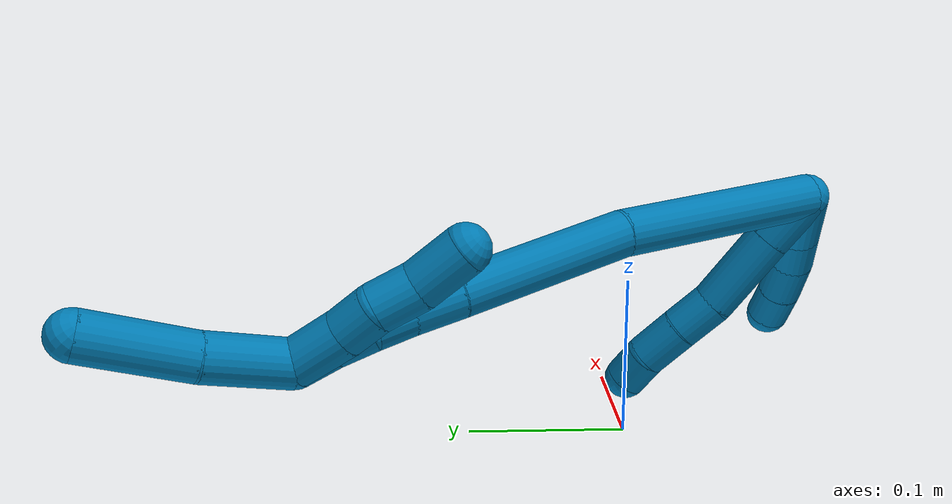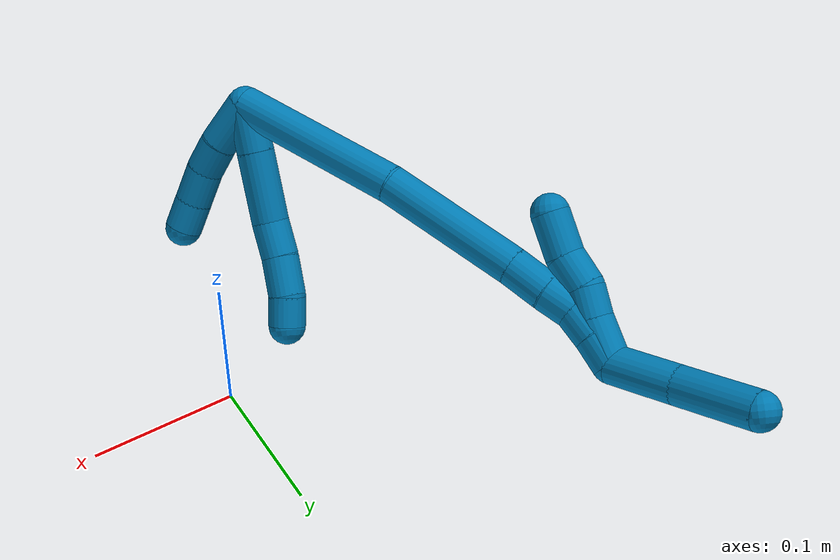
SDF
<sdf version="1.7">
 <world name="default">
  <model name="9">
   <static>0</static>
   <link name="9">
    <collision name="collision-cylinder-e_1_2_8">
     <pose>-0.002611 -0.003166 -0.015028 2.93397 -0.168423 -1.36185</pose>
     <geometry><cylinder><radius>0.0125</radius><length>0.031156</length></cylinder></geometry>
     <surface>
      <friction><ode><mu>1.16</mu><mu2>1.16</mu2><slip1>0</slip1><slip2>0</slip2></ode></friction>
      <contact><ode><kp>1e+06</kp><kd>1</kd><max_vel>0</max_vel><min_depth>0.001</min_depth></ode></contact>
     </surface>
    </collision>
    <visual name="visual-cylinder-e_1_2_8">
     <pose>-0.002611 -0.003166 -0.015028 2.93397 -0.168423 -1.36185</pose>
     <geometry><cylinder><radius>0.0125</radius><length>0.031156</length></cylinder></geometry>
     <material><ambient>0 0.490196 0.709804 1</ambient></material>
    </visual>
    <collision name="collision-cylinder-e_2_8_9">
     <pose>-0.009347 -0.011421 -0.053113 2.92435 -0.172913 -1.34312</pose>
     <geometry><cylinder><radius>0.0125</radius><length>0.047939</length></cylinder></geometry>
     <surface>
      <friction><ode><mu>1.16</mu><mu2>1.16</mu2><slip1>0</slip1><slip2>0</slip2></ode></friction>
      <contact><ode><kp>1e+06</kp><kd>1</kd><max_vel>0</max_vel><min_depth>0.001</min_depth></ode></contact>
     </surface>
    </collision>
    <visual name="visual-cylinder-e_2_8_9">
     <pose>-0.009347 -0.011421 -0.053113 2.92435 -0.172913 -1.34312</pose>
     <geometry><cylinder><radius>0.0125</radius><length>0.047939</length></cylinder></geometry>
     <material><ambient>0 0.490196 0.709804 1</ambient></material>
    </visual>
    <collision name="collision-cylinder-e_3_9_10">
     <pose>-0.015719 -0.016765 -0.088044 3.12015 -0.187098 -2.91398</pose>
     <geometry><cylinder><radius>0.0125</radius><length>0.024175</length></cylinder></geometry>
     <surface>
      <friction><ode><mu>1.16</mu><mu2>1.16</mu2><slip1>0</slip1><slip2>0</slip2></ode></friction>
      <contact><ode><kp>1e+06</kp><kd>1</kd><max_vel>0</max_vel><min_depth>0.001</min_depth></ode></contact>
     </surface>
    </collision>
    <visual name="visual-cylinder-e_3_9_10">
     <pose>-0.015719 -0.016765 -0.088044 3.12015 -0.187098 -2.91398</pose>
     <geometry><cylinder><radius>0.0125</radius><length>0.024175</length></cylinder></geometry>
     <material><ambient>0 0.490196 0.709804 1</ambient></material>
    </visual>
    <collision name="collision-cylinder-e_4_10_11">
     <pose>-0.019387 -0.017804 -0.113151 3.08238 -0.106687 -2.12877</pose>
     <geometry><cylinder><radius>0.0125</radius><length>0.026665</length></cylinder></geometry>
     <surface>
      <friction><ode><mu>1.16</mu><mu2>1.16</mu2><slip1>0</slip1><slip2>0</slip2></ode></friction>
      <contact><ode><kp>1e+06</kp><kd>1</kd><max_vel>0</max_vel><min_depth>0.001</min_depth></ode></contact>
     </surface>
    </collision>
    <visual name="visual-cylinder-e_4_10_11">
     <pose>-0.019387 -0.017804 -0.113151 3.08238 -0.106687 -2.12877</pose>
     <geometry><cylinder><radius>0.0125</radius><length>0.026665</length></cylinder></geometry>
     <material><ambient>0 0.490196 0.709804 1</ambient></material>
    </visual>
    <collision name="collision-cylinder-e_5_11_6">
     <pose>-0.020402 -0.020929 -0.136132 2.90595 0.040372 0.337864</pose>
     <geometry><cylinder><radius>0.0125</radius><length>0.020064</length></cylinder></geometry>
     <surface>
      <friction><ode><mu>1.16</mu><mu2>1.16</mu2><slip1>0</slip1><slip2>0</slip2></ode></friction>
      <contact><ode><kp>1e+06</kp><kd>1</kd><max_vel>0</max_vel><min_depth>0.001</min_depth></ode></contact>
     </surface>
    </collision>
    <visual name="visual-cylinder-e_5_11_6">
     <pose>-0.020402 -0.020929 -0.136132 2.90595 0.040372 0.337864</pose>
     <geometry><cylinder><radius>0.0125</radius><length>0.020064</length></cylinder></geometry>
     <material><ambient>0 0.490196 0.709804 1</ambient></material>
    </visual>
    <collision name="collision-cylinder-e_1_2_12">
     <pose>0.007825 -0.010341 -0.010298 2.35415 0.492151 1.08762</pose>
     <geometry><cylinder><radius>0.0125</radius><length>0.033118</length></cylinder></geometry>
     <surface>
      <friction><ode><mu>1.16</mu><mu2>1.16</mu2><slip1>0</slip1><slip2>0</slip2></ode></friction>
      <contact><ode><kp>1e+06</kp><kd>1</kd><max_vel>0</max_vel><min_depth>0.001</min_depth></ode></contact>
     </surface>
    </collision>
    <visual name="visual-cylinder-e_1_2_12">
     <pose>0.007825 -0.010341 -0.010298 2.35415 0.492151 1.08762</pose>
     <geometry><cylinder><radius>0.0125</radius><length>0.033118</length></cylinder></geometry>
     <material><ambient>0 0.490196 0.709804 1</ambient></material>
    </visual>
    <collision name="collision-cylinder-e_2_12_13">
     <pose>0.019651 -0.027819 -0.027881 2.36638 0.373956 0.867879</pose>
     <geometry><cylinder><radius>0.0125</radius><length>0.021911</length></cylinder></geometry>
     <surface>
      <friction><ode><mu>1.16</mu><mu2>1.16</mu2><slip1>0</slip1><slip2>0</slip2></ode></friction>
      <contact><ode><kp>1e+06</kp><kd>1</kd><max_vel>0</max_vel><min_depth>0.001</min_depth></ode></contact>
     </surface>
    </collision>
    <visual name="visual-cylinder-e_2_12_13">
     <pose>0.019651 -0.027819 -0.027881 2.36638 0.373956 0.867879</pose>
     <geometry><cylinder><radius>0.0125</radius><length>0.021911</length></cylinder></geometry>
     <material><ambient>0 0.490196 0.709804 1</ambient></material>
    </visual>
    <collision name="collision-cylinder-e_3_13_14">
     <pose>0.027167 -0.041806 -0.044528 2.50996 0.294053 0.851078</pose>
     <geometry><cylinder><radius>0.0125</radius><length>0.024242</length></cylinder></geometry>
     <surface>
      <friction><ode><mu>1.16</mu><mu2>1.16</mu2><slip1>0</slip1><slip2>0</slip2></ode></friction>
      <contact><ode><kp>1e+06</kp><kd>1</kd><max_vel>0</max_vel><min_depth>0.001</min_depth></ode></contact>
     </surface>
    </collision>
    <visual name="visual-cylinder-e_3_13_14">
     <pose>0.027167 -0.041806 -0.044528 2.50996 0.294053 0.851078</pose>
     <geometry><cylinder><radius>0.0125</radius><length>0.024242</length></cylinder></geometry>
     <material><ambient>0 0.490196 0.709804 1</ambient></material>
    </visual>
    <collision name="collision-cylinder-e_4_14_5">
     <pose>0.033914 -0.053925 -0.062209 2.5769 0.317397 1.00829</pose>
     <geometry><cylinder><radius>0.0125</radius><length>0.020728</length></cylinder></geometry>
     <surface>
      <friction><ode><mu>1.16</mu><mu2>1.16</mu2><slip1>0</slip1><slip2>0</slip2></ode></friction>
      <contact><ode><kp>1e+06</kp><kd>1</kd><max_vel>0</max_vel><min_depth>0.001</min_depth></ode></contact>
     </surface>
    </collision>
    <visual name="visual-cylinder-e_4_14_5">
     <pose>0.033914 -0.053925 -0.062209 2.5769 0.317397 1.00829</pose>
     <geometry><cylinder><radius>0.0125</radius><length>0.020728</length></cylinder></geometry>
     <material><ambient>0 0.490196 0.709804 1</ambient></material>
    </visual>
    <collision name="collision-cylinder-e_1_2_15">
     <pose>-0.037309 0.03126 -0.034075 -2.39926 -0.678886 1.47363</pose>
     <geometry><cylinder><radius>0.0125</radius><length>0.118831</length></cylinder></geometry>
     <surface>
      <friction><ode><mu>1.16</mu><mu2>1.16</mu2><slip1>0</slip1><slip2>0</slip2></ode></friction>
      <contact><ode><kp>1e+06</kp><kd>1</kd><max_vel>0</max_vel><min_depth>0.001</min_depth></ode></contact>
     </surface>
    </collision>
    <visual name="visual-cylinder-e_1_2_15">
     <pose>-0.037309 0.03126 -0.034075 -2.39926 -0.678886 1.47363</pose>
     <geometry><cylinder><radius>0.0125</radius><length>0.118831</length></cylinder></geometry>
     <material><ambient>0 0.490196 0.709804 1</ambient></material>
    </visual>
    <collision name="collision-cylinder-e_2_15_16">
     <pose>-0.104936 0.081647 -0.098708 -2.58229 -0.699254 1.80729</pose>
     <geometry><cylinder><radius>0.0125</radius><length>0.09421</length></cylinder></geometry>
     <surface>
      <friction><ode><mu>1.16</mu><mu2>1.16</mu2><slip1>0</slip1><slip2>0</slip2></ode></friction>
      <contact><ode><kp>1e+06</kp><kd>1</kd><max_vel>0</max_vel><min_depth>0.001</min_depth></ode></contact>
     </surface>
    </collision>
    <visual name="visual-cylinder-e_2_15_16">
     <pose>-0.104936 0.081647 -0.098708 -2.58229 -0.699254 1.80729</pose>
     <geometry><cylinder><radius>0.0125</radius><length>0.09421</length></cylinder></geometry>
     <material><ambient>0 0.490196 0.709804 1</ambient></material>
    </visual>
    <collision name="collision-cylinder-e_3_16_17">
     <pose>-0.143215 0.106319 -0.138353 -2.5939 -0.642068 1.73874</pose>
     <geometry><cylinder><radius>0.0125</radius><length>0.026584</length></cylinder></geometry>
     <surface>
      <friction><ode><mu>1.16</mu><mu2>1.16</mu2><slip1>0</slip1><slip2>0</slip2></ode></friction>
      <contact><ode><kp>1e+06</kp><kd>1</kd><max_vel>0</max_vel><min_depth>0.001</min_depth></ode></contact>
     </surface>
    </collision>
    <visual name="visual-cylinder-e_3_16_17">
     <pose>-0.143215 0.106319 -0.138353 -2.5939 -0.642068 1.73874</pose>
     <geometry><cylinder><radius>0.0125</radius><length>0.026584</length></cylinder></geometry>
     <material><ambient>0 0.490196 0.709804 1</ambient></material>
    </visual>
    <collision name="collision-cylinder-e_4_17_18">
     <pose>-0.157788 0.115761 -0.15401 -2.60585 -0.71351 1.87208</pose>
     <geometry><cylinder><radius>0.0125</radius><length>0.020206</length></cylinder></geometry>
     <surface>
      <friction><ode><mu>1.16</mu><mu2>1.16</mu2><slip1>0</slip1><slip2>0</slip2></ode></friction>
      <contact><ode><kp>1e+06</kp><kd>1</kd><max_vel>0</max_vel><min_depth>0.001</min_depth></ode></contact>
     </surface>
    </collision>
    <visual name="visual-cylinder-e_4_17_18">
     <pose>-0.157788 0.115761 -0.15401 -2.60585 -0.71351 1.87208</pose>
     <geometry><cylinder><radius>0.0125</radius><length>0.020206</length></cylinder></geometry>
     <material><ambient>0 0.490196 0.709804 1</ambient></material>
    </visual>
    <collision name="collision-cylinder-e_5_18_19">
     <pose>-0.168572 0.122857 -0.169107 -2.78295 -0.429521 1.75484</pose>
     <geometry><cylinder><radius>0.0125</radius><length>0.020036</length></cylinder></geometry>
     <surface>
      <friction><ode><mu>1.16</mu><mu2>1.16</mu2><slip1>0</slip1><slip2>0</slip2></ode></friction>
      <contact><ode><kp>1e+06</kp><kd>1</kd><max_vel>0</max_vel><min_depth>0.001</min_depth></ode></contact>
     </surface>
    </collision>
    <visual name="visual-cylinder-e_5_18_19">
     <pose>-0.168572 0.122857 -0.169107 -2.78295 -0.429521 1.75484</pose>
     <geometry><cylinder><radius>0.0125</radius><length>0.020036</length></cylinder></geometry>
     <material><ambient>0 0.490196 0.709804 1</ambient></material>
    </visual>
    <collision name="collision-cylinder-e_6_19_1">
     <pose>-0.176626 0.128353 -0.186633 -2.89146 -0.395948 2.02191</pose>
     <geometry><cylinder><radius>0.0125</radius><length>0.020132</length></cylinder></geometry>
     <surface>
      <friction><ode><mu>1.16</mu><mu2>1.16</mu2><slip1>0</slip1><slip2>0</slip2></ode></friction>
      <contact><ode><kp>1e+06</kp><kd>1</kd><max_vel>0</max_vel><min_depth>0.001</min_depth></ode></contact>
     </surface>
    </collision>
    <visual name="visual-cylinder-e_6_19_1">
     <pose>-0.176626 0.128353 -0.186633 -2.89146 -0.395948 2.02191</pose>
     <geometry><cylinder><radius>0.0125</radius><length>0.020132</length></cylinder></geometry>
     <material><ambient>0 0.490196 0.709804 1</ambient></material>
    </visual>
    <collision name="collision-cylinder-e_1_1_20">
     <pose>-0.177196 0.128612 -0.181549 0.143882 0.228717 0.016554</pose>
     <geometry><cylinder><radius>0.0125</radius><length>0.029221</length></cylinder></geometry>
     <surface>
      <friction><ode><mu>1.16</mu><mu2>1.16</mu2><slip1>0</slip1><slip2>0</slip2></ode></friction>
      <contact><ode><kp>1e+06</kp><kd>1</kd><max_vel>0</max_vel><min_depth>0.001</min_depth></ode></contact>
     </surface>
    </collision>
    <visual name="visual-cylinder-e_1_1_20">
     <pose>-0.177196 0.128612 -0.181549 0.143882 0.228717 0.016554</pose>
     <geometry><cylinder><radius>0.0125</radius><length>0.029221</length></cylinder></geometry>
     <material><ambient>0 0.490196 0.709804 1</ambient></material>
    </visual>
    <collision name="collision-cylinder-e_2_20_21">
     <pose>-0.172398 0.126226 -0.157579 0.034947 0.148997 0.002609</pose>
     <geometry><cylinder><radius>0.0125</radius><length>0.020007</length></cylinder></geometry>
     <surface>
      <friction><ode><mu>1.16</mu><mu2>1.16</mu2><slip1>0</slip1><slip2>0</slip2></ode></friction>
      <contact><ode><kp>1e+06</kp><kd>1</kd><max_vel>0</max_vel><min_depth>0.001</min_depth></ode></contact>
     </surface>
    </collision>
    <visual name="visual-cylinder-e_2_20_21">
     <pose>-0.172398 0.126226 -0.157579 0.034947 0.148997 0.002609</pose>
     <geometry><cylinder><radius>0.0125</radius><length>0.020007</length></cylinder></geometry>
     <material><ambient>0 0.490196 0.709804 1</ambient></material>
    </visual>
    <collision name="collision-cylinder-e_3_21_22">
     <pose>-0.166654 0.123111 -0.137603 0.26789 0.386635 0.052746</pose>
     <geometry><cylinder><radius>0.0125</radius><length>0.022591</length></cylinder></geometry>
     <surface>
      <friction><ode><mu>1.16</mu><mu2>1.16</mu2><slip1>0</slip1><slip2>0</slip2></ode></friction>
      <contact><ode><kp>1e+06</kp><kd>1</kd><max_vel>0</max_vel><min_depth>0.001</min_depth></ode></contact>
     </surface>
    </collision>
    <visual name="visual-cylinder-e_3_21_22">
     <pose>-0.166654 0.123111 -0.137603 0.26789 0.386635 0.052746</pose>
     <geometry><cylinder><radius>0.0125</radius><length>0.022591</length></cylinder></geometry>
     <material><ambient>0 0.490196 0.709804 1</ambient></material>
    </visual>
    <collision name="collision-cylinder-e_4_22_4">
     <pose>-0.159273 0.119746 -0.113788 0.04336 0.223408 0.004864</pose>
     <geometry><cylinder><radius>0.0125</radius><length>0.028181</length></cylinder></geometry>
     <surface>
      <friction><ode><mu>1.16</mu><mu2>1.16</mu2><slip1>0</slip1><slip2>0</slip2></ode></friction>
      <contact><ode><kp>1e+06</kp><kd>1</kd><max_vel>0</max_vel><min_depth>0.001</min_depth></ode></contact>
     </surface>
    </collision>
    <visual name="visual-cylinder-e_4_22_4">
     <pose>-0.159273 0.119746 -0.113788 0.04336 0.223408 0.004864</pose>
     <geometry><cylinder><radius>0.0125</radius><length>0.028181</length></cylinder></geometry>
     <material><ambient>0 0.490196 0.709804 1</ambient></material>
    </visual>
    <collision name="collision-cylinder-e_1_1_23">
     <pose>-0.193162 0.14729 -0.204136 -2.04329 -0.595241 0.929289</pose>
     <geometry><cylinder><radius>0.0125</radius><length>0.045134</length></cylinder></geometry>
     <surface>
      <friction><ode><mu>1.16</mu><mu2>1.16</mu2><slip1>0</slip1><slip2>0</slip2></ode></friction>
      <contact><ode><kp>1e+06</kp><kd>1</kd><max_vel>0</max_vel><min_depth>0.001</min_depth></ode></contact>
     </surface>
    </collision>
    <visual name="visual-cylinder-e_1_1_23">
     <pose>-0.193162 0.14729 -0.204136 -2.04329 -0.595241 0.929289</pose>
     <geometry><cylinder><radius>0.0125</radius><length>0.045134</length></cylinder></geometry>
     <material><ambient>0 0.490196 0.709804 1</ambient></material>
    </visual>
    <collision name="collision-cylinder-e_2_23_3">
     <pose>-0.218823 0.186035 -0.222371 -1.98549 -0.494009 0.737642</pose>
     <geometry><cylinder><radius>0.0125</radius><length>0.054866</length></cylinder></geometry>
     <surface>
      <friction><ode><mu>1.16</mu><mu2>1.16</mu2><slip1>0</slip1><slip2>0</slip2></ode></friction>
      <contact><ode><kp>1e+06</kp><kd>1</kd><max_vel>0</max_vel><min_depth>0.001</min_depth></ode></contact>
     </surface>
    </collision>
    <visual name="visual-cylinder-e_2_23_3">
     <pose>-0.218823 0.186035 -0.222371 -1.98549 -0.494009 0.737642</pose>
     <geometry><cylinder><radius>0.0125</radius><length>0.054866</length></cylinder></geometry>
     <material><ambient>0 0.490196 0.709804 1</ambient></material>
    </visual>
    <collision name="collision-sphere-3">
     <pose>-0.231831 0.208141 -0.232103 0 -0 0</pose>
     <geometry><sphere><radius>0.0125</radius></sphere></geometry>
     <surface>
      <friction><ode><mu>1.16</mu><mu2>1.16</mu2><slip1>0</slip1><slip2>0</slip2></ode></friction>
      <contact><ode><kp>1e+06</kp><kd>1</kd><max_vel>0</max_vel><min_depth>0.001</min_depth></ode></contact>
     </surface>
    </collision>
    <visual name="visual-sphere-3">
     <pose>-0.231831 0.208141 -0.232103 0 -0 0</pose>
     <geometry><sphere><radius>0.0125</radius></sphere></geometry>
     <material><ambient>0 0.490196 0.709804 1</ambient></material>
    </visual>
    <collision name="collision-sphere-23">
     <pose>-0.205815 0.163929 -0.21264 0 -0 0</pose>
     <geometry><sphere><radius>0.0125</radius></sphere></geometry>
     <surface>
      <friction><ode><mu>1.16</mu><mu2>1.16</mu2><slip1>0</slip1><slip2>0</slip2></ode></friction>
      <contact><ode><kp>1e+06</kp><kd>1</kd><max_vel>0</max_vel><min_depth>0.001</min_depth></ode></contact>
     </surface>
    </collision>
    <visual name="visual-sphere-23">
     <pose>-0.205815 0.163929 -0.21264 0 -0 0</pose>
     <geometry><sphere><radius>0.0125</radius></sphere></geometry>
     <material><ambient>0 0.490196 0.709804 1</ambient></material>
    </visual>
    <collision name="collision-sphere-4">
     <pose>-0.156151 0.11915 -0.100061 0 -0 0</pose>
     <geometry><sphere><radius>0.0125</radius></sphere></geometry>
     <surface>
      <friction><ode><mu>1.16</mu><mu2>1.16</mu2><slip1>0</slip1><slip2>0</slip2></ode></friction>
      <contact><ode><kp>1e+06</kp><kd>1</kd><max_vel>0</max_vel><min_depth>0.001</min_depth></ode></contact>
     </surface>
    </collision>
    <visual name="visual-sphere-4">
     <pose>-0.156151 0.11915 -0.100061 0 -0 0</pose>
     <geometry><sphere><radius>0.0125</radius></sphere></geometry>
     <material><ambient>0 0.490196 0.709804 1</ambient></material>
    </visual>
    <collision name="collision-sphere-22">
     <pose>-0.162395 0.120342 -0.127515 0 -0 0</pose>
     <geometry><sphere><radius>0.0125</radius></sphere></geometry>
     <surface>
      <friction><ode><mu>1.16</mu><mu2>1.16</mu2><slip1>0</slip1><slip2>0</slip2></ode></friction>
      <contact><ode><kp>1e+06</kp><kd>1</kd><max_vel>0</max_vel><min_depth>0.001</min_depth></ode></contact>
     </surface>
    </collision>
    <visual name="visual-sphere-22">
     <pose>-0.162395 0.120342 -0.127515 0 -0 0</pose>
     <geometry><sphere><radius>0.0125</radius></sphere></geometry>
     <material><ambient>0 0.490196 0.709804 1</ambient></material>
    </visual>
    <collision name="collision-sphere-21">
     <pose>-0.170913 0.12588 -0.147692 0 -0 0</pose>
     <geometry><sphere><radius>0.0125</radius></sphere></geometry>
     <surface>
      <friction><ode><mu>1.16</mu><mu2>1.16</mu2><slip1>0</slip1><slip2>0</slip2></ode></friction>
      <contact><ode><kp>1e+06</kp><kd>1</kd><max_vel>0</max_vel><min_depth>0.001</min_depth></ode></contact>
     </surface>
    </collision>
    <visual name="visual-sphere-21">
     <pose>-0.170913 0.12588 -0.147692 0 -0 0</pose>
     <geometry><sphere><radius>0.0125</radius></sphere></geometry>
     <material><ambient>0 0.490196 0.709804 1</ambient></material>
    </visual>
    <collision name="collision-sphere-20">
     <pose>-0.173883 0.126571 -0.167465 0 -0 0</pose>
     <geometry><sphere><radius>0.0125</radius></sphere></geometry>
     <surface>
      <friction><ode><mu>1.16</mu><mu2>1.16</mu2><slip1>0</slip1><slip2>0</slip2></ode></friction>
      <contact><ode><kp>1e+06</kp><kd>1</kd><max_vel>0</max_vel><min_depth>0.001</min_depth></ode></contact>
     </surface>
    </collision>
    <visual name="visual-sphere-20">
     <pose>-0.173883 0.126571 -0.167465 0 -0 0</pose>
     <geometry><sphere><radius>0.0125</radius></sphere></geometry>
     <material><ambient>0 0.490196 0.709804 1</ambient></material>
    </visual>
    <collision name="collision-sphere-6">
     <pose>-0.019997 -0.023269 -0.145879 0 -0 0</pose>
     <geometry><sphere><radius>0.0125</radius></sphere></geometry>
     <surface>
      <friction><ode><mu>1.16</mu><mu2>1.16</mu2><slip1>0</slip1><slip2>0</slip2></ode></friction>
      <contact><ode><kp>1e+06</kp><kd>1</kd><max_vel>0</max_vel><min_depth>0.001</min_depth></ode></contact>
     </surface>
    </collision>
    <visual name="visual-sphere-6">
     <pose>-0.019997 -0.023269 -0.145879 0 -0 0</pose>
     <geometry><sphere><radius>0.0125</radius></sphere></geometry>
     <material><ambient>0 0.490196 0.709804 1</ambient></material>
    </visual>
    <collision name="collision-sphere-11">
     <pose>-0.020807 -0.018589 -0.126385 0 -0 0</pose>
     <geometry><sphere><radius>0.0125</radius></sphere></geometry>
     <surface>
      <friction><ode><mu>1.16</mu><mu2>1.16</mu2><slip1>0</slip1><slip2>0</slip2></ode></friction>
      <contact><ode><kp>1e+06</kp><kd>1</kd><max_vel>0</max_vel><min_depth>0.001</min_depth></ode></contact>
     </surface>
    </collision>
    <visual name="visual-sphere-11">
     <pose>-0.020807 -0.018589 -0.126385 0 -0 0</pose>
     <geometry><sphere><radius>0.0125</radius></sphere></geometry>
     <material><ambient>0 0.490196 0.709804 1</ambient></material>
    </visual>
    <collision name="collision-sphere-10">
     <pose>-0.017967 -0.01702 -0.099918 0 -0 0</pose>
     <geometry><sphere><radius>0.0125</radius></sphere></geometry>
     <surface>
      <friction><ode><mu>1.16</mu><mu2>1.16</mu2><slip1>0</slip1><slip2>0</slip2></ode></friction>
      <contact><ode><kp>1e+06</kp><kd>1</kd><max_vel>0</max_vel><min_depth>0.001</min_depth></ode></contact>
     </surface>
    </collision>
    <visual name="visual-sphere-10">
     <pose>-0.017967 -0.01702 -0.099918 0 -0 0</pose>
     <geometry><sphere><radius>0.0125</radius></sphere></geometry>
     <material><ambient>0 0.490196 0.709804 1</ambient></material>
    </visual>
    <collision name="collision-sphere-9">
     <pose>-0.013471 -0.01651 -0.07617 0 -0 0</pose>
     <geometry><sphere><radius>0.0125</radius></sphere></geometry>
     <surface>
      <friction><ode><mu>1.16</mu><mu2>1.16</mu2><slip1>0</slip1><slip2>0</slip2></ode></friction>
      <contact><ode><kp>1e+06</kp><kd>1</kd><max_vel>0</max_vel><min_depth>0.001</min_depth></ode></contact>
     </surface>
    </collision>
    <visual name="visual-sphere-9">
     <pose>-0.013471 -0.01651 -0.07617 0 -0 0</pose>
     <geometry><sphere><radius>0.0125</radius></sphere></geometry>
     <material><ambient>0 0.490196 0.709804 1</ambient></material>
    </visual>
    <collision name="collision-sphere-2">
     <geometry><sphere><radius>0.0125</radius></sphere></geometry>
     <surface>
      <friction><ode><mu>1.16</mu><mu2>1.16</mu2><slip1>0</slip1><slip2>0</slip2></ode></friction>
      <contact><ode><kp>1e+06</kp><kd>1</kd><max_vel>0</max_vel><min_depth>0.001</min_depth></ode></contact>
     </surface>
    </collision>
    <visual name="visual-sphere-2">
     <geometry><sphere><radius>0.0125</radius></sphere></geometry>
     <material><ambient>0 0.490196 0.709804 1</ambient></material>
    </visual>
    <collision name="collision-sphere-19">
     <pose>-0.172744 0.126054 -0.177635 0 -0 0</pose>
     <geometry><sphere><radius>0.0125</radius></sphere></geometry>
     <surface>
      <friction><ode><mu>1.16</mu><mu2>1.16</mu2><slip1>0</slip1><slip2>0</slip2></ode></friction>
      <contact><ode><kp>1e+06</kp><kd>1</kd><max_vel>0</max_vel><min_depth>0.001</min_depth></ode></contact>
     </surface>
    </collision>
    <visual name="visual-sphere-19">
     <pose>-0.172744 0.126054 -0.177635 0 -0 0</pose>
     <geometry><sphere><radius>0.0125</radius></sphere></geometry>
     <material><ambient>0 0.490196 0.709804 1</ambient></material>
    </visual>
    <collision name="collision-sphere-8">
     <pose>-0.005223 -0.006332 -0.030056 0 -0 0</pose>
     <geometry><sphere><radius>0.0125</radius></sphere></geometry>
     <surface>
      <friction><ode><mu>1.16</mu><mu2>1.16</mu2><slip1>0</slip1><slip2>0</slip2></ode></friction>
      <contact><ode><kp>1e+06</kp><kd>1</kd><max_vel>0</max_vel><min_depth>0.001</min_depth></ode></contact>
     </surface>
    </collision>
    <visual name="visual-sphere-8">
     <pose>-0.005223 -0.006332 -0.030056 0 -0 0</pose>
     <geometry><sphere><radius>0.0125</radius></sphere></geometry>
     <material><ambient>0 0.490196 0.709804 1</ambient></material>
    </visual>
    <collision name="collision-sphere-12">
     <pose>0.015649 -0.020681 -0.020597 0 -0 0</pose>
     <geometry><sphere><radius>0.0125</radius></sphere></geometry>
     <surface>
      <friction><ode><mu>1.16</mu><mu2>1.16</mu2><slip1>0</slip1><slip2>0</slip2></ode></friction>
      <contact><ode><kp>1e+06</kp><kd>1</kd><max_vel>0</max_vel><min_depth>0.001</min_depth></ode></contact>
     </surface>
    </collision>
    <visual name="visual-sphere-12">
     <pose>0.015649 -0.020681 -0.020597 0 -0 0</pose>
     <geometry><sphere><radius>0.0125</radius></sphere></geometry>
     <material><ambient>0 0.490196 0.709804 1</ambient></material>
    </visual>
    <collision name="collision-sphere-13">
     <pose>0.023654 -0.034956 -0.035166 0 -0 0</pose>
     <geometry><sphere><radius>0.0125</radius></sphere></geometry>
     <surface>
      <friction><ode><mu>1.16</mu><mu2>1.16</mu2><slip1>0</slip1><slip2>0</slip2></ode></friction>
      <contact><ode><kp>1e+06</kp><kd>1</kd><max_vel>0</max_vel><min_depth>0.001</min_depth></ode></contact>
     </surface>
    </collision>
    <visual name="visual-sphere-13">
     <pose>0.023654 -0.034956 -0.035166 0 -0 0</pose>
     <geometry><sphere><radius>0.0125</radius></sphere></geometry>
     <material><ambient>0 0.490196 0.709804 1</ambient></material>
    </visual>
    <collision name="collision-sphere-14">
     <pose>0.03068 -0.048656 -0.053891 0 -0 0</pose>
     <geometry><sphere><radius>0.0125</radius></sphere></geometry>
     <surface>
      <friction><ode><mu>1.16</mu><mu2>1.16</mu2><slip1>0</slip1><slip2>0</slip2></ode></friction>
      <contact><ode><kp>1e+06</kp><kd>1</kd><max_vel>0</max_vel><min_depth>0.001</min_depth></ode></contact>
     </surface>
    </collision>
    <visual name="visual-sphere-14">
     <pose>0.03068 -0.048656 -0.053891 0 -0 0</pose>
     <geometry><sphere><radius>0.0125</radius></sphere></geometry>
     <material><ambient>0 0.490196 0.709804 1</ambient></material>
    </visual>
    <collision name="collision-sphere-5">
     <pose>0.037149 -0.059195 -0.070526 0 -0 0</pose>
     <geometry><sphere><radius>0.0125</radius></sphere></geometry>
     <surface>
      <friction><ode><mu>1.16</mu><mu2>1.16</mu2><slip1>0</slip1><slip2>0</slip2></ode></friction>
      <contact><ode><kp>1e+06</kp><kd>1</kd><max_vel>0</max_vel><min_depth>0.001</min_depth></ode></contact>
     </surface>
    </collision>
    <visual name="visual-sphere-5">
     <pose>0.037149 -0.059195 -0.070526 0 -0 0</pose>
     <geometry><sphere><radius>0.0125</radius></sphere></geometry>
     <material><ambient>0 0.490196 0.709804 1</ambient></material>
    </visual>
    <collision name="collision-sphere-15">
     <pose>-0.074617 0.062519 -0.06815 0 -0 0</pose>
     <geometry><sphere><radius>0.0125</radius></sphere></geometry>
     <surface>
      <friction><ode><mu>1.16</mu><mu2>1.16</mu2><slip1>0</slip1><slip2>0</slip2></ode></friction>
      <contact><ode><kp>1e+06</kp><kd>1</kd><max_vel>0</max_vel><min_depth>0.001</min_depth></ode></contact>
     </surface>
    </collision>
    <visual name="visual-sphere-15">
     <pose>-0.074617 0.062519 -0.06815 0 -0 0</pose>
     <geometry><sphere><radius>0.0125</radius></sphere></geometry>
     <material><ambient>0 0.490196 0.709804 1</ambient></material>
    </visual>
    <collision name="collision-sphere-16">
     <pose>-0.135256 0.100776 -0.129265 0 -0 0</pose>
     <geometry><sphere><radius>0.0125</radius></sphere></geometry>
     <surface>
      <friction><ode><mu>1.16</mu><mu2>1.16</mu2><slip1>0</slip1><slip2>0</slip2></ode></friction>
      <contact><ode><kp>1e+06</kp><kd>1</kd><max_vel>0</max_vel><min_depth>0.001</min_depth></ode></contact>
     </surface>
    </collision>
    <visual name="visual-sphere-16">
     <pose>-0.135256 0.100776 -0.129265 0 -0 0</pose>
     <geometry><sphere><radius>0.0125</radius></sphere></geometry>
     <material><ambient>0 0.490196 0.709804 1</ambient></material>
    </visual>
    <collision name="collision-sphere-17">
     <pose>-0.151175 0.111862 -0.147441 0 -0 0</pose>
     <geometry><sphere><radius>0.0125</radius></sphere></geometry>
     <surface>
      <friction><ode><mu>1.16</mu><mu2>1.16</mu2><slip1>0</slip1><slip2>0</slip2></ode></friction>
      <contact><ode><kp>1e+06</kp><kd>1</kd><max_vel>0</max_vel><min_depth>0.001</min_depth></ode></contact>
     </surface>
    </collision>
    <visual name="visual-sphere-17">
     <pose>-0.151175 0.111862 -0.147441 0 -0 0</pose>
     <geometry><sphere><radius>0.0125</radius></sphere></geometry>
     <material><ambient>0 0.490196 0.709804 1</ambient></material>
    </visual>
    <collision name="collision-sphere-18">
     <pose>-0.1644 0.11966 -0.160578 0 -0 0</pose>
     <geometry><sphere><radius>0.0125</radius></sphere></geometry>
     <surface>
      <friction><ode><mu>1.16</mu><mu2>1.16</mu2><slip1>0</slip1><slip2>0</slip2></ode></friction>
      <contact><ode><kp>1e+06</kp><kd>1</kd><max_vel>0</max_vel><min_depth>0.001</min_depth></ode></contact>
     </surface>
    </collision>
    <visual name="visual-sphere-18">
     <pose>-0.1644 0.11966 -0.160578 0 -0 0</pose>
     <geometry><sphere><radius>0.0125</radius></sphere></geometry>
     <material><ambient>0 0.490196 0.709804 1</ambient></material>
    </visual>
    <collision name="collision-sphere-1">
     <pose>-0.180509 0.130652 -0.195632 0 -0 0</pose>
     <geometry><sphere><radius>0.0125</radius></sphere></geometry>
     <surface>
      <friction><ode><mu>1.16</mu><mu2>1.16</mu2><slip1>0</slip1><slip2>0</slip2></ode></friction>
      <contact><ode><kp>1e+06</kp><kd>1</kd><max_vel>0</max_vel><min_depth>0.001</min_depth></ode></contact>
     </surface>
    </collision>
    <visual name="visual-sphere-1">
     <pose>-0.180509 0.130652 -0.195632 0 -0 0</pose>
     <geometry><sphere><radius>0.0125</radius></sphere></geometry>
     <material><ambient>0 0.490196 0.709804 1</ambient></material>
    </visual>
    <inertial>
     <pose>-0.087517 0.061177 -0.103578 0 -0 0</pose>
     <mass>0.75</mass>
     <inertia><ixx>0.000191</ixx><ixy>0</ixy><ixz>0</ixz><iyy>0.000289</iyy><iyz>0</iyz><izz>6e-06</izz></inertia>
    </inertial>
   </link>
   <pose>-0.06921 -0.085598 0.16615 0.864261 -0.173206 -0.276299</pose>
  </model>
 </world>
</sdf>
